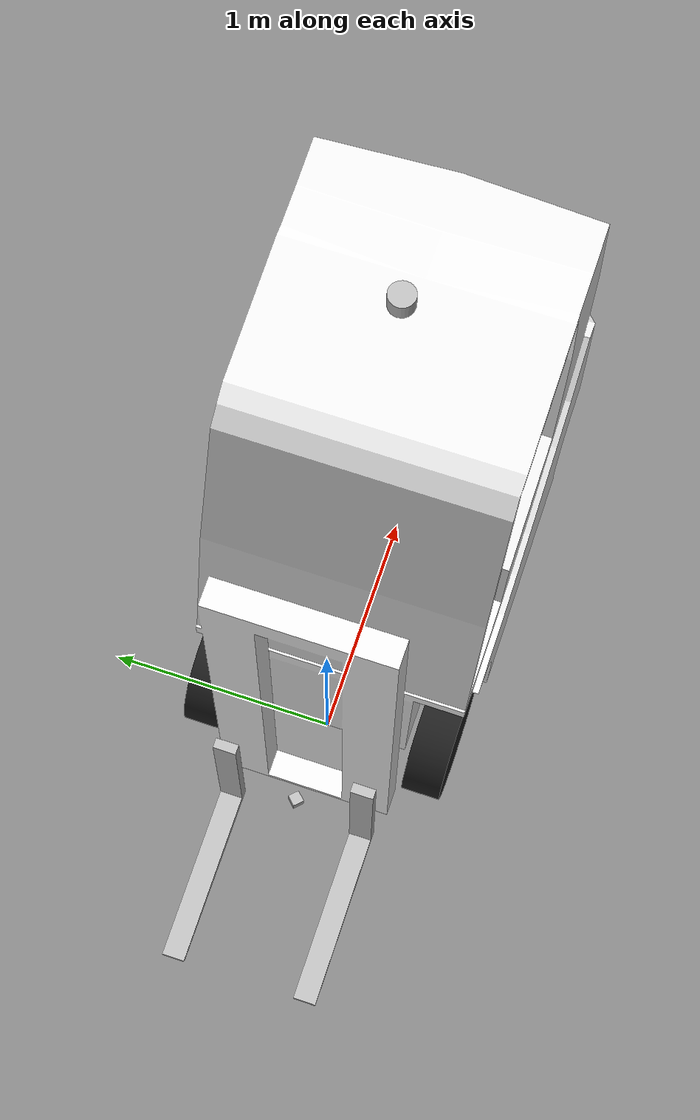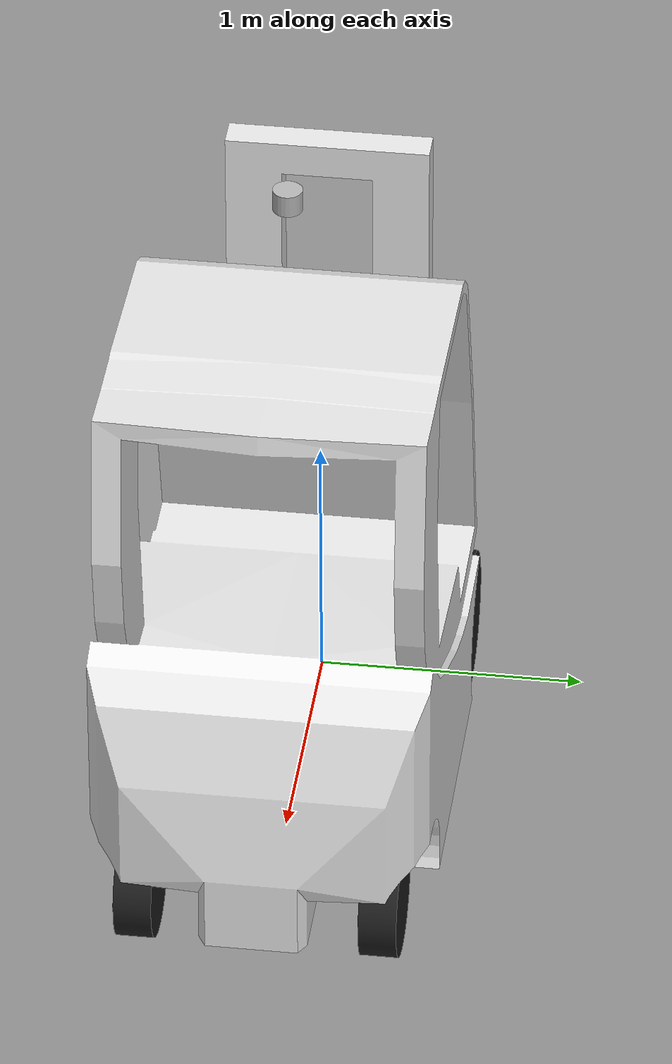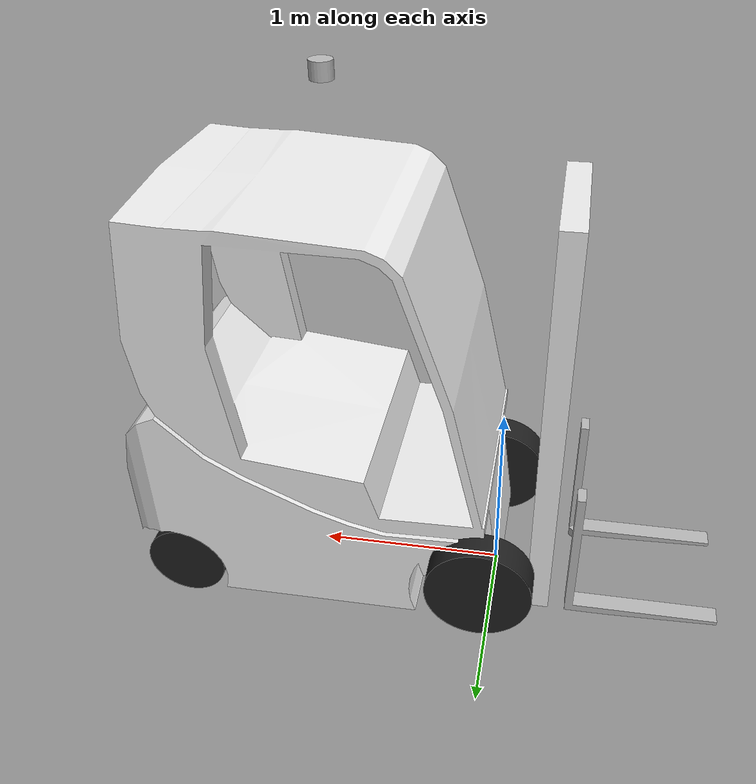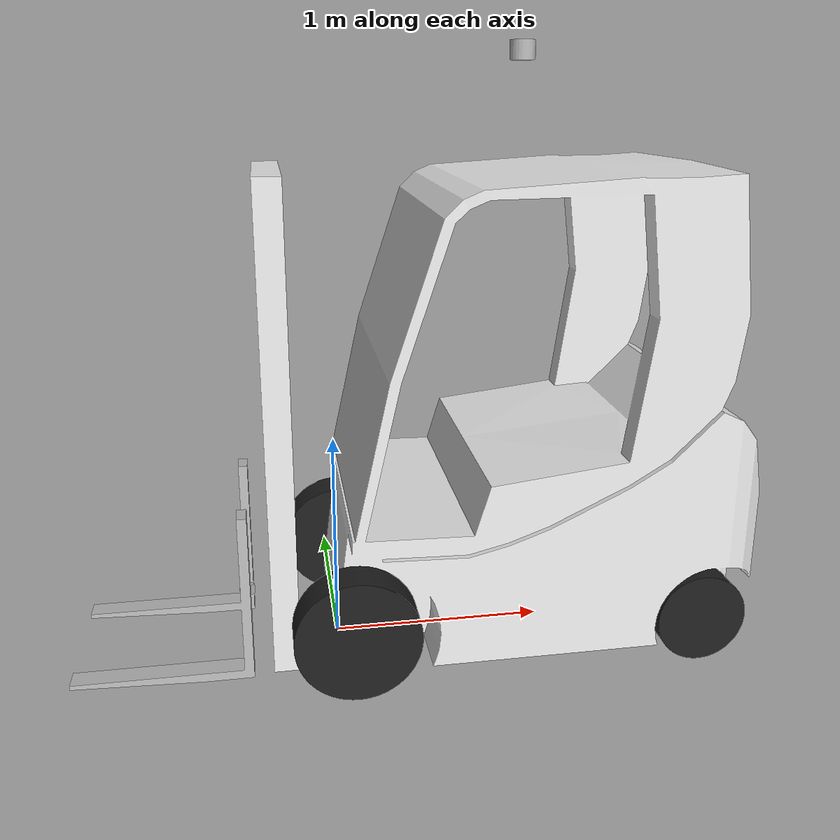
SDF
<?xml version="1.0"?>
<sdf version="1.7">
    <model name="still_rx60">
        <plugin name="control" filename="libcontrol_plugin.so"/>
        <static>1</static>

        <!-- ****************            Links                         *************** -->

        <link name="base_link">
            <pose>0 0 0.1 0 0 0</pose>
            <inertial>
                <pose>1.3526001  0.         0.58135178 0.0 0.0 0.0 </pose>
                <mass>11670</mass>
                <inertia>
                    <ixx>4379.314393</ixx>
                    <ixy>-0.000000</ixy>
                    <ixz>-91.339376</ixz>
                    <iyy>6811.636495</iyy>
                    <iyz>0.000000</iyz>
                    <izz>5227.893809</izz>
                </inertia>
            </inertial>

            <visual name="base_geom_visual">
                <geometry>
                    <mesh>
                        <uri>model://still_rx60/meshes/still_rx60_chassis.stl</uri>
                    </mesh>
                </geometry>
                <material>
                    <script>
                        <name>Gazebo/White</name>
                    </script>
                </material>
            </visual>

            <collision name="base_geom">
                <geometry>
                    <mesh>
                        <uri>model://still_rx60/meshes/still_rx60_chassis.stl</uri>
                    </mesh>
                </geometry>
            </collision>
        </link>

        <link name="fork_link">
            <pose>-0.450 0.000 0.00 0.000 0.000 0.000</pose>
            <inertial>
                <pose>-1.3100884e-01 -1.0000000e-08  2.3893431e-01  0.0 -0.698132 0.0 </pose>
                <mass>200.0</mass>
                <inertia>
                    <ixx>30.772274</ixx>
                    <ixy>-0.000000</ixy>
                    <ixz>-6.426465</ixz>
                    <iyy>22.789314</iyy>
                    <iyz>-0.000000</iyz>
                    <izz>28.280530</izz>
                </inertia>
            </inertial>

            <visual name="fork_geom_visual">
                <geometry>
                    <mesh>
                        <uri>model://still_rx60/meshes/fork.stl</uri>
                    </mesh>
                </geometry>
            </visual>

            <collision name="fork_geom">
                <geometry>
                    <mesh>
                        <uri>model://still_rx60/meshes/fork.stl</uri>
                    </mesh>
                </geometry>
            </collision>
        </link>

        <link name="left_shock_link">
            <pose>1.650 -0.450 0.280 0.000 0.000 0.000</pose>
            <inertial>
                <pose>0.0 0.0 0.0 0.0 0.0 0.0</pose>
                <inertia>
                    <ixx>1e+16</ixx>
                    <ixy>0.0</ixy>
                    <ixz>0.0</ixz>
                    <iyy>1e+16</iyy>
                    <iyz>0.0</iyz>
                    <izz>1e+16</izz>
                </inertia>
            </inertial>
        </link>

        <link name="right_shock_link">
            <pose>1.650 0.450 0.280 0.000 0.000 0.000</pose>
            <inertial>
                <pose>0.0 0.0 0.0 0.0 0.0 0.0</pose>
                <inertia>
                    <ixx>1e+16</ixx>
                    <ixy>0.0</ixy>
                    <ixz>0.0</ixz>
                    <iyy>1e+16</iyy>
                    <iyz>0.0</iyz>
                    <izz>1e+16</izz>
                </inertia>
            </inertial>
        </link>

        <link name="left_rear_wheel">
            <pose>0.050 -0.500 0.280 0.0 0.000 0.000</pose>
            <inertial>
                <pose>0.0 0.0 0.0 0.0 0.0 0.0 </pose>
                <mass>100.0</mass>
                <inertia>
                    <ixx>2.200511</ixx>
                    <ixy>0.000000</ixy>
                    <ixz>0.000000</ixz>
                    <iyy>3.919355</iyy>
                    <iyz>0.000000</iyz>
                    <izz>2.200511</izz>
                </inertia>
            </inertial>

            <visual name="left_rear_wheel_geom_visual">
                <geometry>
                    <mesh>
                        <uri>model://still_rx60/meshes/rear_wheel.stl</uri>
                    </mesh>
                </geometry>
                <material>
                    <script>
                        <name>Gazebo/Black</name>
                    </script>
                </material>
            </visual>

            <collision name="left_rear_wheel_geom">
                <geometry>
                    <mesh>
                        <uri>model://still_rx60/meshes/rear_wheel.stl</uri>
                    </mesh>
                </geometry>
            </collision>

        </link>

        <link name="right_rear_wheel">
            <pose>0.050 0.500 0.280 0.0 0.000 0.000</pose>
            <inertial>
                <pose>0.0 0.0 0.0 0.0 0.0 0.0 </pose>
                <mass>100.0</mass>
                <inertia>
                    <ixx>2.200511</ixx>
                    <ixy>0.000000</ixy>
                    <ixz>0.000000</ixz>
                    <iyy>3.919355</iyy>
                    <iyz>0.000000</iyz>
                    <izz>2.200511</izz>
                </inertia>
            </inertial>

            <visual name="right_rear_wheel_geom_visual">
                <geometry>
                    <mesh>
                        <uri>model://still_rx60/meshes/rear_wheel.stl</uri>
                    </mesh>
                </geometry>
                <material>
                    <script>
                        <name>Gazebo/Black</name>
                    </script>
                </material>
            </visual>

            <collision name="right_rear_wheel_geom">
                <geometry>
                    <mesh>
                        <uri>model://still_rx60/meshes/rear_wheel.stl</uri>
                    </mesh>
                </geometry>
            </collision>

        </link>

        <link name="left_front_wheel">
            <pose>1.650 -0.450 0.210 0.0 0.000 0.000</pose>
            <inertial>
                <pose>0.0 0.0 0.0 0.0 0.0 0.0</pose>
                <mass>80.0</mass>
                <inertia>
                    <ixx>1.012522</ixx>
                    <ixy>0.000000</ixy>
                    <ixz>-0.000000</ixz>
                    <iyy>1.763710</iyy>
                    <iyz>0.000000</iyz>
                    <izz>1.012522</izz>
                </inertia>
            </inertial>

            <visual name="left_front_wheel_geom_visual">
                <geometry>
                    <mesh>
                        <uri>model://still_rx60/meshes/front_wheel.stl</uri>
                    </mesh>
                </geometry>
                <material>
                    <script>
                        <name>Gazebo/Black</name>
                    </script>
                </material>
            </visual>

            <collision name="left_front_wheel_geom">
                <geometry>
                    <mesh>
                        <uri>model://still_rx60/meshes/front_wheel.stl</uri>
                    </mesh>
                </geometry>
            </collision>

        </link>

        <link name="right_front_wheel">
            <pose>1.650 0.450 0.210 0.0 0.000 0.000</pose>
            <inertial>
                <pose>0.0 0.0 0.0 0.0 0.0 0.0</pose>
                <mass>80.0</mass>
                <inertia>
                    <ixx>1.012522</ixx>
                    <ixy>0.000000</ixy>
                    <ixz>-0.000000</ixz>
                    <iyy>1.763710</iyy>
                    <iyz>0.000000</iyz>
                    <izz>1.012522</izz>
                </inertia>
            </inertial>

            <visual name="right_front_wheel_geom_visual">
                <geometry>
                    <mesh>
                        <uri>model://still_rx60/meshes/front_wheel.stl</uri>
                    </mesh>
                </geometry>
                <material>
                    <script>
                        <name>Gazebo/Black</name>
                    </script>
                </material>
            </visual>

            <collision name="right_front_wheel_geom">
                <geometry>
                    <mesh>
                        <uri>model://still_rx60/meshes/front_wheel.stl</uri>
                    </mesh>
                </geometry>
            </collision>

        </link>

        <link name="contact_link">
            <pose>-0.750 0.000 -0.1 0.000 0.000 0.000</pose>
            <inertial>
                <pose>0.0 0.0 0.0 0.0 0.0 0.0</pose>
                <inertia>
                    <ixx>1e+16</ixx>
                    <ixy>0.0</ixy>
                    <ixz>0.0</ixz>
                    <iyy>1e+16</iyy>
                    <iyz>0.0</iyz>
                    <izz>1e+16</izz>
                </inertia>
            </inertial>

            <collision name="contact_link_geom">
                <geometry>
                    <box>
                        <size>.4 .8 .08</size>
                    </box>
                </geometry>
            </collision>

            <sensor name='contact_sensor' type='contact'>
      <always_on>true</always_on>
                <contact>
                    <collision>contact_link_geom</collision>
                </contact>
                    <plugin name="contact_sensor_plugin" filename="libcontact_plugin.so"/>
            </sensor>
        </link>

        <link name="tim_link">
            <pose>-0.43 0.000 0.26 3.141592653589793 0.000 0.0</pose>
            <inertial>
                <pose>0.0 0.0 0.0 0.0 0.0 0.0</pose>
                <inertia>
                    <ixx>1e+16</ixx>
                    <ixy>0.0</ixy>
                    <ixz>0.0</ixz>
                    <iyy>1e+16</iyy>
                    <iyz>0.0</iyz>
                    <izz>1e+16</izz>
                </inertia>
            </inertial>

            <collision name="tim_geom">
                <pose>0.000 0.000 0.000 0.000 0.000 0.7853981633974485</pose>
                <geometry>
                    <box>
                        <size>0.05 0.05 0.05</size>
                    </box>
                </geometry>
            </collision>

            <visual name="tim_geom_visual">
                <pose>0.000 0.000 0.000 0.000 0.000 0.7853981633974485</pose>
                <geometry>
                    <box>
                        <size>0.05 0.05 0.05</size>
                    </box>
                </geometry>
            </visual>

            <sensor name="tim_sensor" type="gpu_ray">
                <pose>0.0 0.00 0 0 0 3.141592653589793</pose>

                <visualize>false</visualize>
                <update_rate>15</update_rate>
                <ray>
                    <scan>
                        <horizontal>
                            <samples>810</samples>
                            <resolution>1.000000</resolution>
                            <min_angle>-2.3561945</min_angle>
                            <max_angle>2.3561945</max_angle>
                        </horizontal>
                    </scan>
                    <range>
                        <min>0.05</min>
                        <max>10.0</max>
                        <resolution>0.005</resolution>
                    </range>
                    <noise>
                        <type>gaussian</type>
                        <mean>0.0</mean>
                        <stddev>0.010</stddev>
                    </noise>
                </ray>
                <plugin name="gazebo_ros_tim_controller" filename="libgazebo_ros_gpu_laser.so">
                    <topicName>tim/scan</topicName>
                    <frameName>/tim</frameName>
                </plugin>
            </sensor>
        </link>

        <link name="rslidar_base_link">
            <pose>0.850 0.000 2.720 0.000 0.000 0.000</pose>
            <inertial>
                <pose>0.0 0.0 0.0 0.0 0.0 0.0</pose>
                <inertia>
                    <ixx>1e+16</ixx>
                    <ixy>0.0</ixy>
                    <ixz>0.0</ixz>
                    <iyy>1e+16</iyy>
                    <iyz>0.0</iyz>
                    <izz>1e+16</izz>
                </inertia>
            </inertial>

            <collision name="rslidar_base_geom">
                <geometry>
                    <cylinder>
                        <radius>0.0545</radius>
                        <length>0.0827</length>
                    </cylinder>
                </geometry>
            </collision>

            <visual name="rslidar_base_geom_visual">
                <geometry>
                    <cylinder>
                        <radius>0.0545</radius>
                        <length>0.0827</length>
                    </cylinder>
                </geometry>
            </visual>
        </link>
        <link name="rslidar_link">
            <pose>0.850 0.000 2.880 0.000 0.0 0.0</pose>
            <inertial>
                <pose>0.0 0.0 0.0 0.0 0.0 0.0</pose>
                <inertia>
                    <ixx>1e+16</ixx>
                    <ixy>0.0</ixy>
                    <ixz>0.0</ixz>
                    <iyy>1e+16</iyy>
                    <iyz>0.0</iyz>
                    <izz>1e+16</izz>
                </inertia>
            </inertial>

            <sensor name="rslidar_sensor" type="gpu_ray">
                <pose>0 0 0 0 0 0</pose>
                <visualize>false</visualize>
                <update_rate>10</update_rate>
                <ray>
                    <scan>
                        <horizontal>
                            <samples>2016</samples>
                            <resolution>1</resolution>
                            <min_angle>-3.141592653589793</min_angle>
                            <max_angle>3.141592653589793</max_angle>
                        </horizontal>
                        <vertical>
                            <samples>16</samples>
                            <resolution>1</resolution>
                            <min_angle>-0.2617992</min_angle>
                            <max_angle>0.2617992</max_angle>
                        </vertical>
                    </scan>
                    <range>
                        <min>0.20</min>
                        <max>150.0</max>
                        <resolution>0.005</resolution>
                    </range>
                    <noise>
                        <type>gaussian</type>
                        <mean>0.0</mean>
                        <stddev>0.005</stddev>
                    </noise>
                </ray>
                <plugin name="gazebo_ros_rslidar_controller" filename="libgazebo_ros_gpu_laser.so">
                    <topicName>rslidar/scan</topicName>
                    <frameName>/rslidar</frameName>
                </plugin>
            </sensor>
        </link>

        <!-- ****************           Joints                         *************** -->

        <joint name="base_joint" type="prismatic">
            <parent>base_link</parent>
            <child>fork_link</child>
            <axis>
                <xyz>0.000000 0.000000 1.000000</xyz>
                <limit>
                    <lower>0.2</lower>
                    <upper>5.0</upper>
                    <effort>1000</effort>
                    <velocity>0.2</velocity>
                </limit>
            </axis>
        </joint>

        <joint name="left_shock_joint" type="revolute">
            <parent>base_link</parent>
            <child>left_shock_link</child>
            <axis>
                <xyz>0.000000 0.000000 1.000000</xyz>
                <limit>
                    <lower>-1.570796</lower>
                    <upper>1.570796</upper>
                </limit>
                <dynamics>
                    <friction>0.001</friction>
                </dynamics>
            </axis>
        </joint>
        <joint name="right_shock_joint" type="revolute">
            <parent>base_link</parent>
            <child>right_shock_link</child>
            <axis>
                <xyz>0.000000 0.000000 1.000000</xyz>
                <limit>
                    <lower>-1.570796</lower>
                    <upper>1.570796</upper>
                </limit>
                <dynamics>
                    <friction>0.001</friction>
                </dynamics>
            </axis>
        </joint>

        <joint name="left_rear_axle" type="revolute">
            <parent>base_link</parent>
            <child>left_rear_wheel</child>
            <axis>
                <xyz>0.000000 1.000000 0.000000</xyz>
                <limit>
                    <effort>1.0</effort>
                </limit>
                <dynamics>
                    <friction>0.001</friction>
                </dynamics>
            </axis>
            <physics>
                <ode>
                    <limit>
                        <cfm>0.0</cfm>
                        <erp>0.9</erp>
                    </limit>
                </ode>
            </physics>
        </joint>
        <joint name="right_rear_axle" type="revolute">
            <parent>base_link</parent>
            <child>right_rear_wheel</child>
            <axis>
                <xyz>0.000000 1.000000 0.000000</xyz>
                <limit>
                    <effort>1.0</effort>
                </limit>
                <dynamics>
                    <friction>0.001</friction>
                </dynamics>
            </axis>
            <physics>
                <ode>
                    <limit>
                        <cfm>0.0</cfm>
                        <erp>0.9</erp>
                    </limit>
                </ode>
            </physics>
        </joint>
        <joint name="left_front_axle" type="revolute">
            <parent>left_shock_link</parent>
            <child>left_front_wheel</child>
            <axis>
                <xyz>0.000000 1.000000 0.000000</xyz>
                <limit>
                    <effort>1.0</effort>
                </limit>
                <dynamics>
                    <friction>0.001</friction>
                </dynamics>
            </axis>
            <physics>
                <ode>
                    <limit>
                        <cfm>0.0</cfm>
                        <erp>0.9</erp>
                    </limit>
                </ode>
            </physics>
        </joint>
        <joint name="right_front_axle" type="revolute">
            <parent>right_shock_link</parent>
            <child>right_front_wheel</child>
            <axis>
                <xyz>0.000000 1.000000 0.000000</xyz>
                <limit>
                    <effort>1.0</effort>
                </limit>
                <dynamics>
                    <friction>0.001</friction>
                </dynamics>
            </axis>
            <physics>
                <ode>
                    <limit>
                        <cfm>0.0</cfm>
                        <erp>0.9</erp>
                    </limit>
                </ode>
            </physics>
        </joint>

        <joint name="contact_joint" type="fixed">
            <parent>fork_link</parent>
            <child>contact_link</child>
        </joint>

        <joint name="tim_joint" type="fixed">
            <parent>fork_link</parent>
            <child>tim_link</child>
        </joint>

        <joint name="rslidar_base_joint" type="fixed">
            <parent>base_link</parent>
            <child>rslidar_base_link</child>
            <axis>
                <xyz>0.000000 0.000000 1.000000</xyz>
                <limit>
                    <effort>204.95</effort>
                    <velocity>39.02</velocity>
                </limit>
            </axis>
        </joint>
        <joint name="rslidar_joint" type="fixed">
            <parent>rslidar_base_link</parent>
            <child>rslidar_link</child>
        </joint>

    </model>
</sdf>
